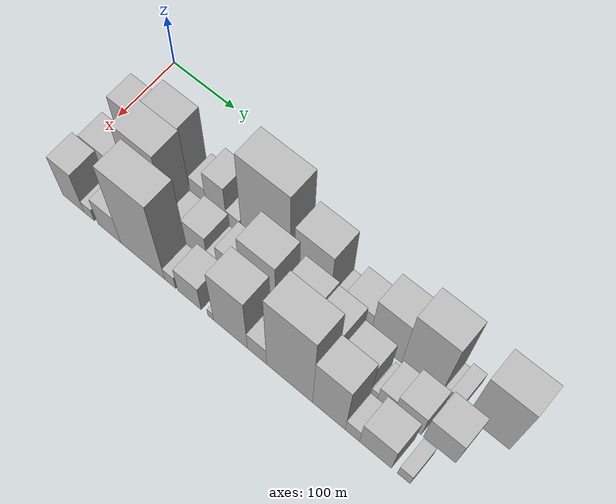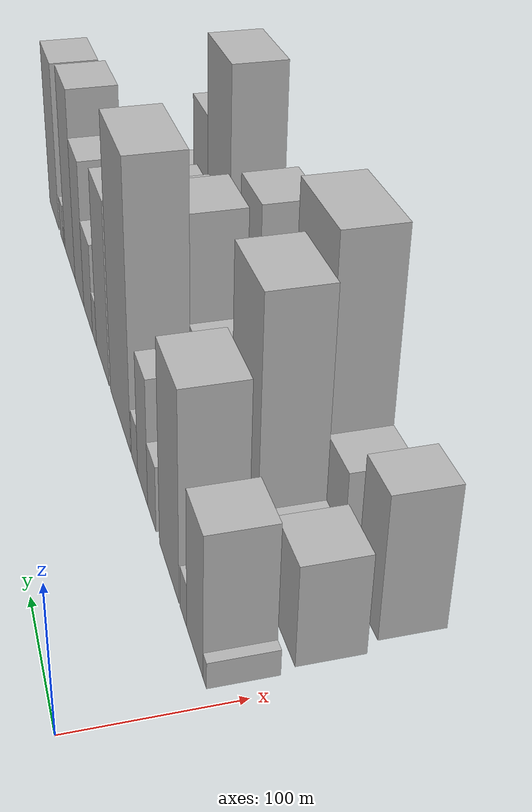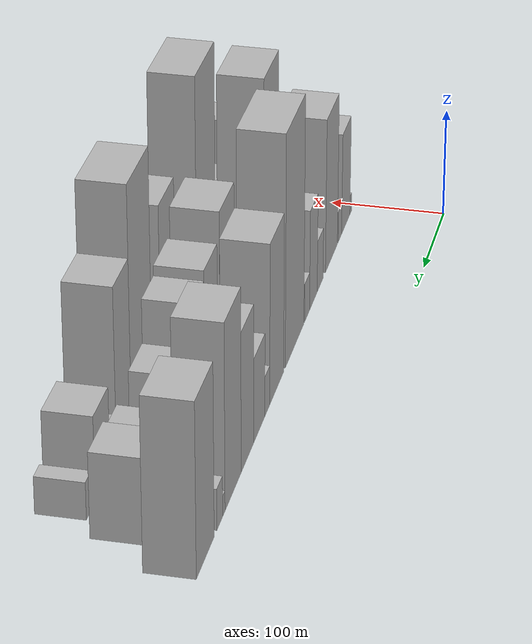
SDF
<sdf version="1.6">
 <world name="default">
  <model name="building_17">
   <static>1</static>
   <pose>100.0000 15.2226 0 0.000000 0.000000 0.000000</pose>
   <link name="link">
    <pose>0 0 9.00 0 0 0</pose>
    <collision name="collision"><geometry><box><size>40.0000 7.3841 18.0000</size></box></geometry></collision>
    <visual name="visual">
     <cast_shadows>0</cast_shadows>
     <geometry><box><size>40.0000 7.3841 18.0000</size></box></geometry>
     <material>
      <script>
       <uri>model://HANNAS_wall/materials/scripts</uri>
       <uri>model://HANNAS_wall/materials/textures</uri>
       <name>vrc/HANNAS_wall</name>
      </script>
     </material>
    </visual>
   </link>
  </model>
  <model name="building_18">
   <static>1</static>
   <pose>100.0000 37.8228 0 0.000000 0.000000 0.000000</pose>
   <link name="link">
    <pose>0 0 48.00 0 0 0</pose>
    <collision name="collision"><geometry><box><size>40.0000 37.8164 96.0000</size></box></geometry></collision>
    <visual name="visual">
     <cast_shadows>0</cast_shadows>
     <geometry><box><size>40.0000 37.8164 96.0000</size></box></geometry>
     <material>
      <script>
       <uri>model://HANNAS_wall/materials/scripts</uri>
       <uri>model://HANNAS_wall/materials/textures</uri>
       <name>vrc/HANNAS_wall</name>
      </script>
     </material>
    </visual>
   </link>
  </model>
  <model name="building_19">
   <static>1</static>
   <pose>100.0000 64.6895 0 0.000000 0.000000 0.000000</pose>
   <link name="link">
    <pose>0 0 15.00 0 0 0</pose>
    <collision name="collision"><geometry><box><size>40.0000 15.9169 30.0000</size></box></geometry></collision>
    <visual name="visual">
     <cast_shadows>0</cast_shadows>
     <geometry><box><size>40.0000 15.9169 30.0000</size></box></geometry>
     <material>
      <script>
       <uri>model://HANNAS_wall/materials/scripts</uri>
       <uri>model://HANNAS_wall/materials/textures</uri>
       <name>vrc/HANNAS_wall</name>
      </script>
     </material>
    </visual>
   </link>
  </model>
  <model name="building_20">
   <static>1</static>
   <pose>100.0000 101.7479 0 0.000000 0.000000 0.000000</pose>
   <link name="link">
    <pose>0 0 72.00 0 0 0</pose>
    <collision name="collision"><geometry><box><size>40.0000 52.1997 144.0000</size></box></geometry></collision>
    <visual name="visual">
     <cast_shadows>0</cast_shadows>
     <geometry><box><size>40.0000 52.1997 144.0000</size></box></geometry>
     <material>
      <script>
       <uri>model://HANNAS_wall/materials/scripts</uri>
       <uri>model://HANNAS_wall/materials/textures</uri>
       <name>vrc/HANNAS_wall</name>
      </script>
     </material>
    </visual>
   </link>
  </model>
  <model name="building_21">
   <static>1</static>
   <pose>100.0000 150.2726 0 0.000000 0.000000 0.000000</pose>
   <link name="link">
    <pose>0 0 24.00 0 0 0</pose>
    <collision name="collision"><geometry><box><size>40.0000 24.8498 48.0000</size></box></geometry></collision>
    <visual name="visual">
     <cast_shadows>0</cast_shadows>
     <geometry><box><size>40.0000 24.8498 48.0000</size></box></geometry>
     <material>
      <script>
       <uri>model://HANNAS_wall/materials/scripts</uri>
       <uri>model://HANNAS_wall/materials/textures</uri>
       <name>vrc/HANNAS_wall</name>
      </script>
     </material>
    </visual>
   </link>
  </model>
  <model name="building_22">
   <static>1</static>
   <pose>100.0000 178.5431 0 0.000000 0.000000 0.000000</pose>
   <link name="link">
    <pose>0 0 46.50 0 0 0</pose>
    <collision name="collision"><geometry><box><size>40.0000 31.6912 93.0000</size></box></geometry></collision>
    <visual name="visual">
     <cast_shadows>0</cast_shadows>
     <geometry><box><size>40.0000 31.6912 93.0000</size></box></geometry>
     <material>
      <script>
       <uri>model://HANNAS_wall/materials/scripts</uri>
       <uri>model://HANNAS_wall/materials/textures</uri>
       <name>vrc/HANNAS_wall</name>
      </script>
     </material>
    </visual>
   </link>
  </model>
  <model name="building_23">
   <static>1</static>
   <pose>100.0000 204.7480 0 0.000000 0.000000 0.000000</pose>
   <link name="link">
    <pose>0 0 18.00 0 0 0</pose>
    <collision name="collision"><geometry><box><size>40.0000 20.7185 36.0000</size></box></geometry></collision>
    <visual name="visual">
     <cast_shadows>0</cast_shadows>
     <geometry><box><size>40.0000 20.7185 36.0000</size></box></geometry>
     <material>
      <script>
       <uri>model://HANNAS_wall/materials/scripts</uri>
       <uri>model://HANNAS_wall/materials/textures</uri>
       <name>vrc/HANNAS_wall</name>
      </script>
     </material>
    </visual>
   </link>
  </model>
  <model name="building_24">
   <static>1</static>
   <pose>100.0000 254.8425 0 0.000000 0.000000 0.000000</pose>
   <link name="link">
    <pose>0 0 105.00 0 0 0</pose>
    <collision name="collision"><geometry><box><size>40.0000 73.4706 210.0000</size></box></geometry></collision>
    <visual name="visual">
     <cast_shadows>0</cast_shadows>
     <geometry><box><size>40.0000 73.4706 210.0000</size></box></geometry>
     <material>
      <script>
       <uri>model://HANNAS_wall/materials/scripts</uri>
       <uri>model://HANNAS_wall/materials/textures</uri>
       <name>vrc/HANNAS_wall</name>
      </script>
     </material>
    </visual>
   </link>
  </model>
  <model name="building_25">
   <static>1</static>
   <pose>100.0000 323.9424 0 0.000000 0.000000 0.000000</pose>
   <link name="link">
    <pose>0 0 72.00 0 0 0</pose>
    <collision name="collision"><geometry><box><size>40.0000 52.7291 144.0000</size></box></geometry></collision>
    <visual name="visual">
     <cast_shadows>0</cast_shadows>
     <geometry><box><size>40.0000 52.7291 144.0000</size></box></geometry>
     <material>
      <script>
       <uri>model://HANNAS_wall/materials/scripts</uri>
       <uri>model://HANNAS_wall/materials/textures</uri>
       <name>vrc/HANNAS_wall</name>
      </script>
     </material>
    </visual>
   </link>
  </model>
  <model name="building_26">
   <static>1</static>
   <pose>100.0000 359.3144 0 0.000000 0.000000 0.000000</pose>
   <link name="link">
    <pose>0 0 18.00 0 0 0</pose>
    <collision name="collision"><geometry><box><size>40.0000 18.0149 36.0000</size></box></geometry></collision>
    <visual name="visual">
     <cast_shadows>0</cast_shadows>
     <geometry><box><size>40.0000 18.0149 36.0000</size></box></geometry>
     <material>
      <script>
       <uri>model://HANNAS_wall/materials/scripts</uri>
       <uri>model://HANNAS_wall/materials/textures</uri>
       <name>vrc/HANNAS_wall</name>
      </script>
     </material>
    </visual>
   </link>
  </model>
  <model name="building_27">
   <static>1</static>
   <pose>100.0000 388.4351 0 0.000000 0.000000 0.000000</pose>
   <link name="link">
    <pose>0 0 37.50 0 0 0</pose>
    <collision name="collision"><geometry><box><size>40.0000 40.2265 75.0000</size></box></geometry></collision>
    <visual name="visual">
     <cast_shadows>0</cast_shadows>
     <geometry><box><size>40.0000 40.2265 75.0000</size></box></geometry>
     <material>
      <script>
       <uri>model://HANNAS_wall/materials/scripts</uri>
       <uri>model://HANNAS_wall/materials/textures</uri>
       <name>vrc/HANNAS_wall</name>
      </script>
     </material>
    </visual>
   </link>
  </model>
  <model name="building_28">
   <static>1</static>
   <pose>100.0000 430.8241 0 0.000000 0.000000 0.000000</pose>
   <link name="link">
    <pose>0 0 61.50 0 0 0</pose>
    <collision name="collision"><geometry><box><size>40.0000 44.5515 123.0000</size></box></geometry></collision>
    <visual name="visual">
     <cast_shadows>0</cast_shadows>
     <geometry><box><size>40.0000 44.5515 123.0000</size></box></geometry>
     <material>
      <script>
       <uri>model://HANNAS_wall/materials/scripts</uri>
       <uri>model://HANNAS_wall/materials/textures</uri>
       <name>vrc/HANNAS_wall</name>
      </script>
     </material>
    </visual>
   </link>
  </model>
  <model name="building_29">
   <static>1</static>
   <pose>100.0000 480.5783 0 0.000000 0.000000 0.000000</pose>
   <link name="link">
    <pose>0 0 81.00 0 0 0</pose>
    <collision name="collision"><geometry><box><size>40.0000 54.9570 162.0000</size></box></geometry></collision>
    <visual name="visual">
     <cast_shadows>0</cast_shadows>
     <geometry><box><size>40.0000 54.9570 162.0000</size></box></geometry>
     <material>
      <script>
       <uri>model://HANNAS_wall/materials/scripts</uri>
       <uri>model://HANNAS_wall/materials/textures</uri>
       <name>vrc/HANNAS_wall</name>
      </script>
     </material>
    </visual>
   </link>
  </model>
  <model name="building_30">
   <static>1</static>
   <pose>100.0000 512.0214 0 0.000000 0.000000 0.000000</pose>
   <link name="link">
    <pose>0 0 9.00 0 0 0</pose>
    <collision name="collision"><geometry><box><size>40.0000 7.9293 18.0000</size></box></geometry></collision>
    <visual name="visual">
     <cast_shadows>0</cast_shadows>
     <geometry><box><size>40.0000 7.9293 18.0000</size></box></geometry>
     <material>
      <script>
       <uri>model://HANNAS_wall/materials/scripts</uri>
       <uri>model://HANNAS_wall/materials/textures</uri>
       <name>vrc/HANNAS_wall</name>
      </script>
     </material>
    </visual>
   </link>
  </model>
  <model name="building_31">
   <static>1</static>
   <pose>100.0000 525.4122 0 0.000000 0.000000 0.000000</pose>
   <link name="link">
    <pose>0 0 18.00 0 0 0</pose>
    <collision name="collision"><geometry><box><size>40.0000 18.8523 36.0000</size></box></geometry></collision>
    <visual name="visual">
     <cast_shadows>0</cast_shadows>
     <geometry><box><size>40.0000 18.8523 36.0000</size></box></geometry>
     <material>
      <script>
       <uri>model://HANNAS_wall/materials/scripts</uri>
       <uri>model://HANNAS_wall/materials/textures</uri>
       <name>vrc/HANNAS_wall</name>
      </script>
     </material>
    </visual>
   </link>
  </model>
  <model name="building_32">
   <static>1</static>
   <pose>100.0000 572.3750 0 0.000000 0.000000 0.000000</pose>
   <link name="link">
    <pose>0 0 75.00 0 0 0</pose>
    <collision name="collision"><geometry><box><size>40.0000 57.0732 150.0000</size></box></geometry></collision>
    <visual name="visual">
     <cast_shadows>0</cast_shadows>
     <geometry><box><size>40.0000 57.0732 150.0000</size></box></geometry>
     <material>
      <script>
       <uri>model://HANNAS_wall/materials/scripts</uri>
       <uri>model://HANNAS_wall/materials/textures</uri>
       <name>vrc/HANNAS_wall</name>
      </script>
     </material>
    </visual>
   </link>
  </model>
  <model name="building_47">
   <static>1</static>
   <pose>149.0000 35.7043 0 0.000000 0.000000 0.000000</pose>
   <link name="link">
    <pose>0 0 34.50 0 0 0</pose>
    <collision name="collision"><geometry><box><size>40.0000 40.8360 69.0000</size></box></geometry></collision>
    <visual name="visual">
     <cast_shadows>0</cast_shadows>
     <geometry><box><size>40.0000 40.8360 69.0000</size></box></geometry>
     <material>
      <script>
       <uri>model://HANNAS_wall/materials/scripts</uri>
       <uri>model://HANNAS_wall/materials/textures</uri>
       <name>vrc/HANNAS_wall</name>
      </script>
     </material>
    </visual>
   </link>
  </model>
  <model name="building_48">
   <static>1</static>
   <pose>149.0000 76.5928 0 0.000000 0.000000 0.000000</pose>
   <link name="link">
    <pose>0 0 22.50 0 0 0</pose>
    <collision name="collision"><geometry><box><size>40.0000 26.9410 45.0000</size></box></geometry></collision>
    <visual name="visual">
     <cast_shadows>0</cast_shadows>
     <geometry><box><size>40.0000 26.9410 45.0000</size></box></geometry>
     <material>
      <script>
       <uri>model://HANNAS_wall/materials/scripts</uri>
       <uri>model://HANNAS_wall/materials/textures</uri>
       <name>vrc/HANNAS_wall</name>
      </script>
     </material>
    </visual>
   </link>
  </model>
  <model name="building_49">
   <static>1</static>
   <pose>149.0000 119.3025 0 0.000000 0.000000 0.000000</pose>
   <link name="link">
    <pose>0 0 93.00 0 0 0</pose>
    <collision name="collision"><geometry><box><size>40.0000 58.4784 186.0000</size></box></geometry></collision>
    <visual name="visual">
     <cast_shadows>0</cast_shadows>
     <geometry><box><size>40.0000 58.4784 186.0000</size></box></geometry>
     <material>
      <script>
       <uri>model://HANNAS_wall/materials/scripts</uri>
       <uri>model://HANNAS_wall/materials/textures</uri>
       <name>vrc/HANNAS_wall</name>
      </script>
     </material>
    </visual>
   </link>
  </model>
  <model name="building_50">
   <static>1</static>
   <pose>149.0000 160.7802 0 0.000000 0.000000 0.000000</pose>
   <link name="link">
    <pose>0 0 21.00 0 0 0</pose>
    <collision name="collision"><geometry><box><size>40.0000 24.4770 42.0000</size></box></geometry></collision>
    <visual name="visual">
     <cast_shadows>0</cast_shadows>
     <geometry><box><size>40.0000 24.4770 42.0000</size></box></geometry>
     <material>
      <script>
       <uri>model://HANNAS_wall/materials/scripts</uri>
       <uri>model://HANNAS_wall/materials/textures</uri>
       <name>vrc/HANNAS_wall</name>
      </script>
     </material>
    </visual>
   </link>
  </model>
  <model name="building_51">
   <static>1</static>
   <pose>149.0000 190.6908 0 0.000000 0.000000 0.000000</pose>
   <link name="link">
    <pose>0 0 31.50 0 0 0</pose>
    <collision name="collision"><geometry><box><size>40.0000 35.3442 63.0000</size></box></geometry></collision>
    <visual name="visual">
     <cast_shadows>0</cast_shadows>
     <geometry><box><size>40.0000 35.3442 63.0000</size></box></geometry>
     <material>
      <script>
       <uri>model://HANNAS_wall/materials/scripts</uri>
       <uri>model://HANNAS_wall/materials/textures</uri>
       <name>vrc/HANNAS_wall</name>
      </script>
     </material>
    </visual>
   </link>
  </model>
  <model name="building_52">
   <static>1</static>
   <pose>149.0000 216.2092 0 0.000000 0.000000 0.000000</pose>
   <link name="link">
    <pose>0 0 15.00 0 0 0</pose>
    <collision name="collision"><geometry><box><size>40.0000 15.6927 30.0000</size></box></geometry></collision>
    <visual name="visual">
     <cast_shadows>0</cast_shadows>
     <geometry><box><size>40.0000 15.6927 30.0000</size></box></geometry>
     <material>
      <script>
       <uri>model://HANNAS_wall/materials/scripts</uri>
       <uri>model://HANNAS_wall/materials/textures</uri>
       <name>vrc/HANNAS_wall</name>
      </script>
     </material>
    </visual>
   </link>
  </model>
  <model name="building_53">
   <static>1</static>
   <pose>149.0000 241.9845 0 0.000000 0.000000 0.000000</pose>
   <link name="link">
    <pose>0 0 33.00 0 0 0</pose>
    <collision name="collision"><geometry><box><size>40.0000 35.8581 66.0000</size></box></geometry></collision>
    <visual name="visual">
     <cast_shadows>0</cast_shadows>
     <geometry><box><size>40.0000 35.8581 66.0000</size></box></geometry>
     <material>
      <script>
       <uri>model://HANNAS_wall/materials/scripts</uri>
       <uri>model://HANNAS_wall/materials/textures</uri>
       <name>vrc/HANNAS_wall</name>
      </script>
     </material>
    </visual>
   </link>
  </model>
  <model name="building_54">
   <static>1</static>
   <pose>149.0000 286.1070 0 0.000000 0.000000 0.000000</pose>
   <link name="link">
    <pose>0 0 73.50 0 0 0</pose>
    <collision name="collision"><geometry><box><size>40.0000 52.3868 147.0000</size></box></geometry></collision>
    <visual name="visual">
     <cast_shadows>0</cast_shadows>
     <geometry><box><size>40.0000 52.3868 147.0000</size></box></geometry>
     <material>
      <script>
       <uri>model://HANNAS_wall/materials/scripts</uri>
       <uri>model://HANNAS_wall/materials/textures</uri>
       <name>vrc/HANNAS_wall</name>
      </script>
     </material>
    </visual>
   </link>
  </model>
  <model name="building_55">
   <static>1</static>
   <pose>149.0000 342.9180 0 0.000000 0.000000 0.000000</pose>
   <link name="link">
    <pose>0 0 61.50 0 0 0</pose>
    <collision name="collision"><geometry><box><size>40.0000 45.2353 123.0000</size></box></geometry></collision>
    <visual name="visual">
     <cast_shadows>0</cast_shadows>
     <geometry><box><size>40.0000 45.2353 123.0000</size></box></geometry>
     <material>
      <script>
       <uri>model://HANNAS_wall/materials/scripts</uri>
       <uri>model://HANNAS_wall/materials/textures</uri>
       <name>vrc/HANNAS_wall</name>
      </script>
     </material>
    </visual>
   </link>
  </model>
  <model name="building_56">
   <static>1</static>
   <pose>149.0000 384.5722 0 0.000000 0.000000 0.000000</pose>
   <link name="link">
    <pose>0 0 57.00 0 0 0</pose>
    <collision name="collision"><geometry><box><size>40.0000 38.0732 114.0000</size></box></geometry></collision>
    <visual name="visual">
     <cast_shadows>0</cast_shadows>
     <geometry><box><size>40.0000 38.0732 114.0000</size></box></geometry>
     <material>
      <script>
       <uri>model://HANNAS_wall/materials/scripts</uri>
       <uri>model://HANNAS_wall/materials/textures</uri>
       <name>vrc/HANNAS_wall</name>
      </script>
     </material>
    </visual>
   </link>
  </model>
  <model name="building_57">
   <static>1</static>
   <pose>149.0000 425.1330 0 0.000000 0.000000 0.000000</pose>
   <link name="link">
    <pose>0 0 37.50 0 0 0</pose>
    <collision name="collision"><geometry><box><size>40.0000 43.0483 75.0000</size></box></geometry></collision>
    <visual name="visual">
     <cast_shadows>0</cast_shadows>
     <geometry><box><size>40.0000 43.0483 75.0000</size></box></geometry>
     <material>
      <script>
       <uri>model://HANNAS_wall/materials/scripts</uri>
       <uri>model://HANNAS_wall/materials/textures</uri>
       <name>vrc/HANNAS_wall</name>
      </script>
     </material>
    </visual>
   </link>
  </model>
  <model name="building_58">
   <static>1</static>
   <pose>149.0000 454.0670 0 0.000000 0.000000 0.000000</pose>
   <link name="link">
    <pose>0 0 10.50 0 0 0</pose>
    <collision name="collision"><geometry><box><size>40.0000 8.8198 21.0000</size></box></geometry></collision>
    <visual name="visual">
     <cast_shadows>0</cast_shadows>
     <geometry><box><size>40.0000 8.8198 21.0000</size></box></geometry>
     <material>
      <script>
       <uri>model://HANNAS_wall/materials/scripts</uri>
       <uri>model://HANNAS_wall/materials/textures</uri>
       <name>vrc/HANNAS_wall</name>
      </script>
     </material>
    </visual>
   </link>
  </model>
  <model name="building_59">
   <static>1</static>
   <pose>149.0000 470.1554 0 0.000000 0.000000 0.000000</pose>
   <link name="link">
    <pose>0 0 22.50 0 0 0</pose>
    <collision name="collision"><geometry><box><size>40.0000 23.3570 45.0000</size></box></geometry></collision>
    <visual name="visual">
     <cast_shadows>0</cast_shadows>
     <geometry><box><size>40.0000 23.3570 45.0000</size></box></geometry>
     <material>
      <script>
       <uri>model://HANNAS_wall/materials/scripts</uri>
       <uri>model://HANNAS_wall/materials/textures</uri>
       <name>vrc/HANNAS_wall</name>
      </script>
     </material>
    </visual>
   </link>
  </model>
  <model name="building_60">
   <static>1</static>
   <pose>149.0000 500.3880 0 0.000000 0.000000 0.000000</pose>
   <link name="link">
    <pose>0 0 33.00 0 0 0</pose>
    <collision name="collision"><geometry><box><size>40.0000 37.1082 66.0000</size></box></geometry></collision>
    <visual name="visual">
     <cast_shadows>0</cast_shadows>
     <geometry><box><size>40.0000 37.1082 66.0000</size></box></geometry>
     <material>
      <script>
       <uri>model://HANNAS_wall/materials/scripts</uri>
       <uri>model://HANNAS_wall/materials/textures</uri>
       <name>vrc/HANNAS_wall</name>
      </script>
     </material>
    </visual>
   </link>
  </model>
  <model name="building_61">
   <static>1</static>
   <pose>149.0000 543.8191 0 0.000000 0.000000 0.000000</pose>
   <link name="link">
    <pose>0 0 37.50 0 0 0</pose>
    <collision name="collision"><geometry><box><size>40.0000 43.7538 75.0000</size></box></geometry></collision>
    <visual name="visual">
     <cast_shadows>0</cast_shadows>
     <geometry><box><size>40.0000 43.7538 75.0000</size></box></geometry>
     <material>
      <script>
       <uri>model://HANNAS_wall/materials/scripts</uri>
       <uri>model://HANNAS_wall/materials/textures</uri>
       <name>vrc/HANNAS_wall</name>
      </script>
     </material>
    </visual>
   </link>
  </model>
  <model name="building_76">
   <static>1</static>
   <pose>198.0000 40.6409 0 0.000000 0.000000 0.000000</pose>
   <link name="link">
    <pose>0 0 49.50 0 0 0</pose>
    <collision name="collision"><geometry><box><size>40.0000 35.2871 99.0000</size></box></geometry></collision>
    <visual name="visual">
     <cast_shadows>0</cast_shadows>
     <geometry><box><size>40.0000 35.2871 99.0000</size></box></geometry>
     <material>
      <script>
       <uri>model://HANNAS_wall/materials/scripts</uri>
       <uri>model://HANNAS_wall/materials/textures</uri>
       <name>vrc/HANNAS_wall</name>
      </script>
     </material>
    </visual>
   </link>
  </model>
  <model name="building_77">
   <static>1</static>
   <pose>198.0000 66.6241 0 0.000000 0.000000 0.000000</pose>
   <link name="link">
    <pose>0 0 15.00 0 0 0</pose>
    <collision name="collision"><geometry><box><size>40.0000 16.6794 30.0000</size></box></geometry></collision>
    <visual name="visual">
     <cast_shadows>0</cast_shadows>
     <geometry><box><size>40.0000 16.6794 30.0000</size></box></geometry>
     <material>
      <script>
       <uri>model://HANNAS_wall/materials/scripts</uri>
       <uri>model://HANNAS_wall/materials/textures</uri>
       <name>vrc/HANNAS_wall</name>
      </script>
     </material>
    </visual>
   </link>
  </model>
  <model name="building_78">
   <static>1</static>
   <pose>198.0000 99.4359 0 0.000000 0.000000 0.000000</pose>
   <link name="link">
    <pose>0 0 34.50 0 0 0</pose>
    <collision name="collision"><geometry><box><size>40.0000 36.9442 69.0000</size></box></geometry></collision>
    <visual name="visual">
     <cast_shadows>0</cast_shadows>
     <geometry><box><size>40.0000 36.9442 69.0000</size></box></geometry>
     <material>
      <script>
       <uri>model://HANNAS_wall/materials/scripts</uri>
       <uri>model://HANNAS_wall/materials/textures</uri>
       <name>vrc/HANNAS_wall</name>
      </script>
     </material>
    </visual>
   </link>
  </model>
  <model name="building_79">
   <static>1</static>
   <pose>198.0000 152.5309 0 0.000000 0.000000 0.000000</pose>
   <link name="link">
    <pose>0 0 100.50 0 0 0</pose>
    <collision name="collision"><geometry><box><size>40.0000 69.2458 201.0000</size></box></geometry></collision>
    <visual name="visual">
     <cast_shadows>0</cast_shadows>
     <geometry><box><size>40.0000 69.2458 201.0000</size></box></geometry>
     <material>
      <script>
       <uri>model://HANNAS_wall/materials/scripts</uri>
       <uri>model://HANNAS_wall/materials/textures</uri>
       <name>vrc/HANNAS_wall</name>
      </script>
     </material>
    </visual>
   </link>
  </model>
  <model name="building_80">
   <static>1</static>
   <pose>198.0000 195.6573 0 0.000000 0.000000 0.000000</pose>
   <link name="link">
    <pose>0 0 16.50 0 0 0</pose>
    <collision name="collision"><geometry><box><size>40.0000 17.0070 33.0000</size></box></geometry></collision>
    <visual name="visual">
     <cast_shadows>0</cast_shadows>
     <geometry><box><size>40.0000 17.0070 33.0000</size></box></geometry>
     <material>
      <script>
       <uri>model://HANNAS_wall/materials/scripts</uri>
       <uri>model://HANNAS_wall/materials/textures</uri>
       <name>vrc/HANNAS_wall</name>
      </script>
     </material>
    </visual>
   </link>
  </model>
  <model name="building_81">
   <static>1</static>
   <pose>198.0000 225.1452 0 0.000000 0.000000 0.000000</pose>
   <link name="link">
    <pose>0 0 33.00 0 0 0</pose>
    <collision name="collision"><geometry><box><size>40.0000 35.9688 66.0000</size></box></geometry></collision>
    <visual name="visual">
     <cast_shadows>0</cast_shadows>
     <geometry><box><size>40.0000 35.9688 66.0000</size></box></geometry>
     <material>
      <script>
       <uri>model://HANNAS_wall/materials/scripts</uri>
       <uri>model://HANNAS_wall/materials/textures</uri>
       <name>vrc/HANNAS_wall</name>
      </script>
     </material>
    </visual>
   </link>
  </model>
  <model name="building_82">
   <static>1</static>
   <pose>198.0000 257.5464 0 0.000000 0.000000 0.000000</pose>
   <link name="link">
    <pose>0 0 10.50 0 0 0</pose>
    <collision name="collision"><geometry><box><size>40.0000 8.8335 21.0000</size></box></geometry></collision>
    <visual name="visual">
     <cast_shadows>0</cast_shadows>
     <geometry><box><size>40.0000 8.8335 21.0000</size></box></geometry>
     <material>
      <script>
       <uri>model://HANNAS_wall/materials/scripts</uri>
       <uri>model://HANNAS_wall/materials/textures</uri>
       <name>vrc/HANNAS_wall</name>
      </script>
     </material>
    </visual>
   </link>
  </model>
  <model name="building_83">
   <static>1</static>
   <pose>198.0000 287.2953 0 0.000000 0.000000 0.000000</pose>
   <link name="link">
    <pose>0 0 73.50 0 0 0</pose>
    <collision name="collision"><geometry><box><size>40.0000 50.6642 147.0000</size></box></geometry></collision>
    <visual name="visual">
     <cast_shadows>0</cast_shadows>
     <geometry><box><size>40.0000 50.6642 147.0000</size></box></geometry>
     <material>
      <script>
       <uri>model://HANNAS_wall/materials/scripts</uri>
       <uri>model://HANNAS_wall/materials/textures</uri>
       <name>vrc/HANNAS_wall</name>
      </script>
     </material>
    </visual>
   </link>
  </model>
  <model name="building_84">
   <static>1</static>
   <pose>198.0000 326.6995 0 0.000000 0.000000 0.000000</pose>
   <link name="link">
    <pose>0 0 25.50 0 0 0</pose>
    <collision name="collision"><geometry><box><size>40.0000 28.1442 51.0000</size></box></geometry></collision>
    <visual name="visual">
     <cast_shadows>0</cast_shadows>
     <geometry><box><size>40.0000 28.1442 51.0000</size></box></geometry>
     <material>
      <script>
       <uri>model://HANNAS_wall/materials/scripts</uri>
       <uri>model://HANNAS_wall/materials/textures</uri>
       <name>vrc/HANNAS_wall</name>
      </script>
     </material>
    </visual>
   </link>
  </model>
  <model name="building_85">
   <static>1</static>
   <pose>198.0000 373.9194 0 0.000000 0.000000 0.000000</pose>
   <link name="link">
    <pose>0 0 106.50 0 0 0</pose>
    <collision name="collision"><geometry><box><size>40.0000 66.2955 213.0000</size></box></geometry></collision>
    <visual name="visual">
     <cast_shadows>0</cast_shadows>
     <geometry><box><size>40.0000 66.2955 213.0000</size></box></geometry>
     <material>
      <script>
       <uri>model://HANNAS_wall/materials/scripts</uri>
       <uri>model://HANNAS_wall/materials/textures</uri>
       <name>vrc/HANNAS_wall</name>
      </script>
     </material>
    </visual>
   </link>
  </model>
  <model name="building_86">
   <static>1</static>
   <pose>198.0000 430.0941 0 0.000000 0.000000 0.000000</pose>
   <link name="link">
    <pose>0 0 75.00 0 0 0</pose>
    <collision name="collision"><geometry><box><size>40.0000 46.0541 150.0000</size></box></geometry></collision>
    <visual name="visual">
     <cast_shadows>0</cast_shadows>
     <geometry><box><size>40.0000 46.0541 150.0000</size></box></geometry>
     <material>
      <script>
       <uri>model://HANNAS_wall/materials/scripts</uri>
       <uri>model://HANNAS_wall/materials/textures</uri>
       <name>vrc/HANNAS_wall</name>
      </script>
     </material>
    </visual>
   </link>
  </model>
  <model name="building_87">
   <static>1</static>
   <pose>198.0000 462.9866 0 0.000000 0.000000 0.000000</pose>
   <link name="link">
    <pose>0 0 19.50 0 0 0</pose>
    <collision name="collision"><geometry><box><size>40.0000 19.7308 39.0000</size></box></geometry></collision>
    <visual name="visual">
     <cast_shadows>0</cast_shadows>
     <geometry><box><size>40.0000 19.7308 39.0000</size></box></geometry>
     <material>
      <script>
       <uri>model://HANNAS_wall/materials/scripts</uri>
       <uri>model://HANNAS_wall/materials/textures</uri>
       <name>vrc/HANNAS_wall</name>
      </script>
     </material>
    </visual>
   </link>
  </model>
  <model name="building_88">
   <static>1</static>
   <pose>198.0000 494.8748 0 0.000000 0.000000 0.000000</pose>
   <link name="link">
    <pose>0 0 37.50 0 0 0</pose>
    <collision name="collision"><geometry><box><size>40.0000 44.0456 75.0000</size></box></geometry></collision>
    <visual name="visual">
     <cast_shadows>0</cast_shadows>
     <geometry><box><size>40.0000 44.0456 75.0000</size></box></geometry>
     <material>
      <script>
       <uri>model://HANNAS_wall/materials/scripts</uri>
       <uri>model://HANNAS_wall/materials/textures</uri>
       <name>vrc/HANNAS_wall</name>
      </script>
     </material>
    </visual>
   </link>
  </model>
  <model name="building_89">
   <static>1</static>
   <pose>198.0000 533.5891 0 0.000000 0.000000 0.000000</pose>
   <link name="link">
    <pose>0 0 16.50 0 0 0</pose>
    <collision name="collision"><geometry><box><size>40.0000 17.3831 33.0000</size></box></geometry></collision>
    <visual name="visual">
     <cast_shadows>0</cast_shadows>
     <geometry><box><size>40.0000 17.3831 33.0000</size></box></geometry>
     <material>
      <script>
       <uri>model://HANNAS_wall/materials/scripts</uri>
       <uri>model://HANNAS_wall/materials/textures</uri>
       <name>vrc/HANNAS_wall</name>
      </script>
     </material>
    </visual>
   </link>
  </model>
 </world>
</sdf>
